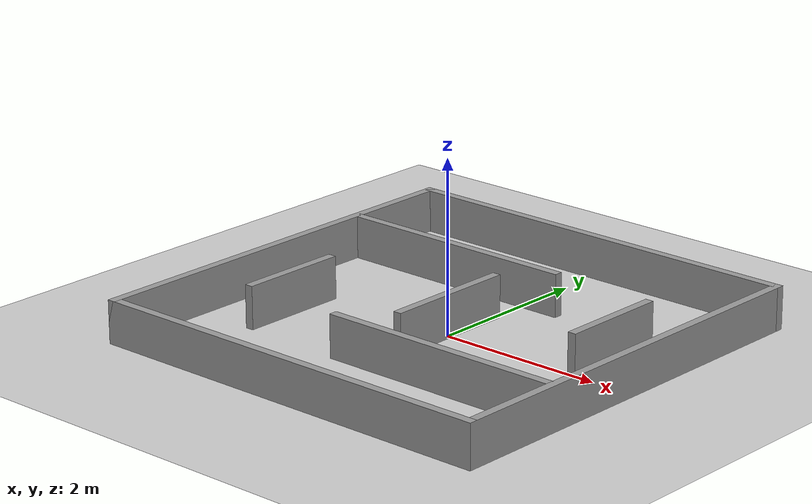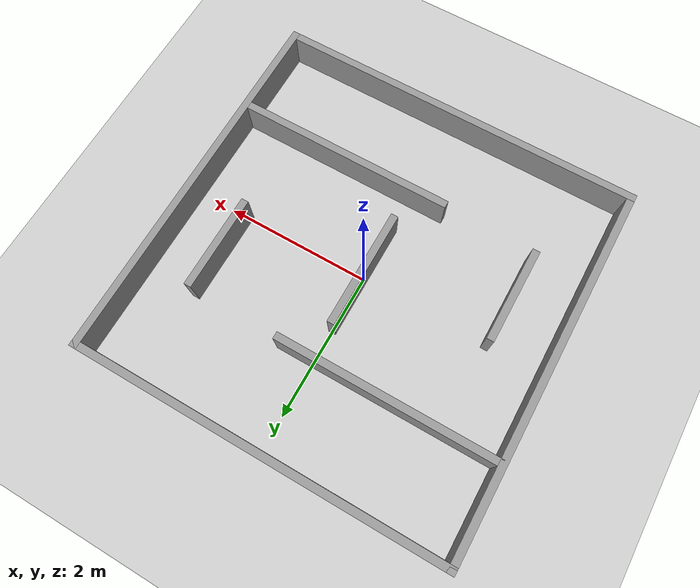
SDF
<?xml version="1.0"?>
<sdf version="1.6">
  <world name="ire_maze">
    <include><uri>model://ground_plane</uri></include>
    <include><uri>model://sun</uri></include>
    <!-- 출발: (-2.0, 2.0) 부근 / 도착: (2.0, -2.0) 부근 -->
    <model name="outer_n">
      <static>true</static>
      <pose>0 2.5 0.25 0 0 0</pose>
      <link name="link">
        <collision name="c"><geometry><box><size>5.1 0.1 0.5</size></box></geometry></collision>
        <visual name="v"><geometry><box><size>5.1 0.1 0.5</size></box></geometry>
          <material><ambient>0.55 0.55 0.55 1</ambient><diffuse>0.6 0.6 0.6 1</diffuse></material>
        </visual>
      </link>
    </model>
    <model name="outer_s">
      <static>true</static>
      <pose>0 -2.5 0.25 0 0 0</pose>
      <link name="link">
        <collision name="c"><geometry><box><size>5.1 0.1 0.5</size></box></geometry></collision>
        <visual name="v"><geometry><box><size>5.1 0.1 0.5</size></box></geometry>
          <material><ambient>0.55 0.55 0.55 1</ambient><diffuse>0.6 0.6 0.6 1</diffuse></material>
        </visual>
      </link>
    </model>
    <model name="outer_e">
      <static>true</static>
      <pose>2.5 0 0.25 0 0 1.5708</pose>
      <link name="link">
        <collision name="c"><geometry><box><size>5.1 0.1 0.5</size></box></geometry></collision>
        <visual name="v"><geometry><box><size>5.1 0.1 0.5</size></box></geometry>
          <material><ambient>0.55 0.55 0.55 1</ambient><diffuse>0.6 0.6 0.6 1</diffuse></material>
        </visual>
      </link>
    </model>
    <model name="outer_w">
      <static>true</static>
      <pose>-2.5 0 0.25 0 0 1.5708</pose>
      <link name="link">
        <collision name="c"><geometry><box><size>5.1 0.1 0.5</size></box></geometry></collision>
        <visual name="v"><geometry><box><size>5.1 0.1 0.5</size></box></geometry>
          <material><ambient>0.55 0.55 0.55 1</ambient><diffuse>0.6 0.6 0.6 1</diffuse></material>
        </visual>
      </link>
    </model>
    <model name="in_1">
      <static>true</static>
      <pose>-1.0 1.25 0.25 0 0 0</pose>
      <link name="link">
        <collision name="c"><geometry><box><size>3.0 0.1 0.5</size></box></geometry></collision>
        <visual name="v"><geometry><box><size>3.0 0.1 0.5</size></box></geometry>
          <material><ambient>0.55 0.55 0.55 1</ambient><diffuse>0.6 0.6 0.6 1</diffuse></material>
        </visual>
      </link>
    </model>
    <model name="in_2">
      <static>true</static>
      <pose>1.0 -1.25 0.25 0 0 0</pose>
      <link name="link">
        <collision name="c"><geometry><box><size>3.0 0.1 0.5</size></box></geometry></collision>
        <visual name="v"><geometry><box><size>3.0 0.1 0.5</size></box></geometry>
          <material><ambient>0.55 0.55 0.55 1</ambient><diffuse>0.6 0.6 0.6 1</diffuse></material>
        </visual>
      </link>
    </model>
    <model name="in_3">
      <static>true</static>
      <pose>-1.75 -0.6 0.25 0 0 1.5708</pose>
      <link name="link">
        <collision name="c"><geometry><box><size>1.3 0.1 0.5</size></box></geometry></collision>
        <visual name="v"><geometry><box><size>1.3 0.1 0.5</size></box></geometry>
          <material><ambient>0.55 0.55 0.55 1</ambient><diffuse>0.6 0.6 0.6 1</diffuse></material>
        </visual>
      </link>
    </model>
    <model name="in_4">
      <static>true</static>
      <pose>1.75 0.6 0.25 0 0 1.5708</pose>
      <link name="link">
        <collision name="c"><geometry><box><size>1.3 0.1 0.5</size></box></geometry></collision>
        <visual name="v"><geometry><box><size>1.3 0.1 0.5</size></box></geometry>
          <material><ambient>0.55 0.55 0.55 1</ambient><diffuse>0.6 0.6 0.6 1</diffuse></material>
        </visual>
      </link>
    </model>
    <model name="in_5">
      <static>true</static>
      <pose>0.0 0.0 0.25 0 0 1.5708</pose>
      <link name="link">
        <collision name="c"><geometry><box><size>1.6 0.1 0.5</size></box></geometry></collision>
        <visual name="v"><geometry><box><size>1.6 0.1 0.5</size></box></geometry>
          <material><ambient>0.55 0.55 0.55 1</ambient><diffuse>0.6 0.6 0.6 1</diffuse></material>
        </visual>
      </link>
    </model>
  </world>
</sdf>
